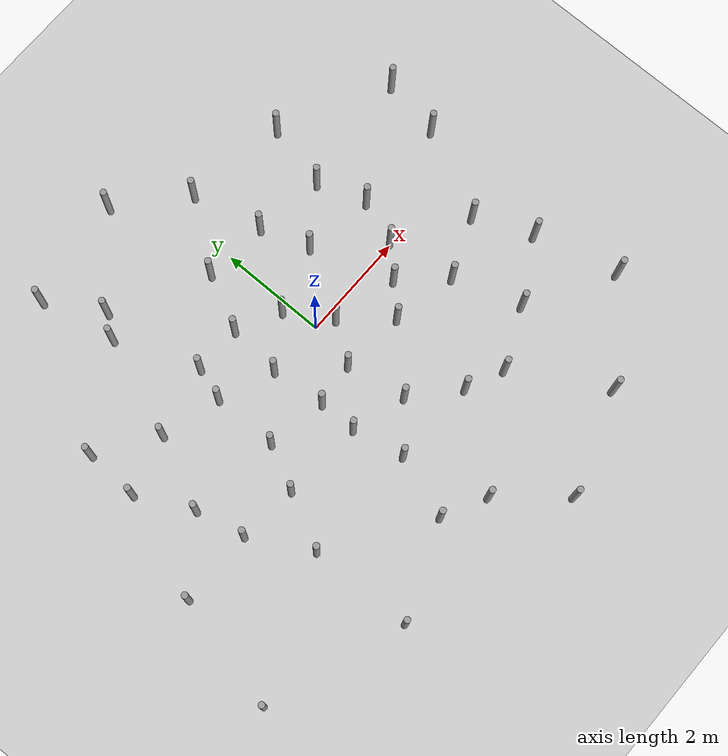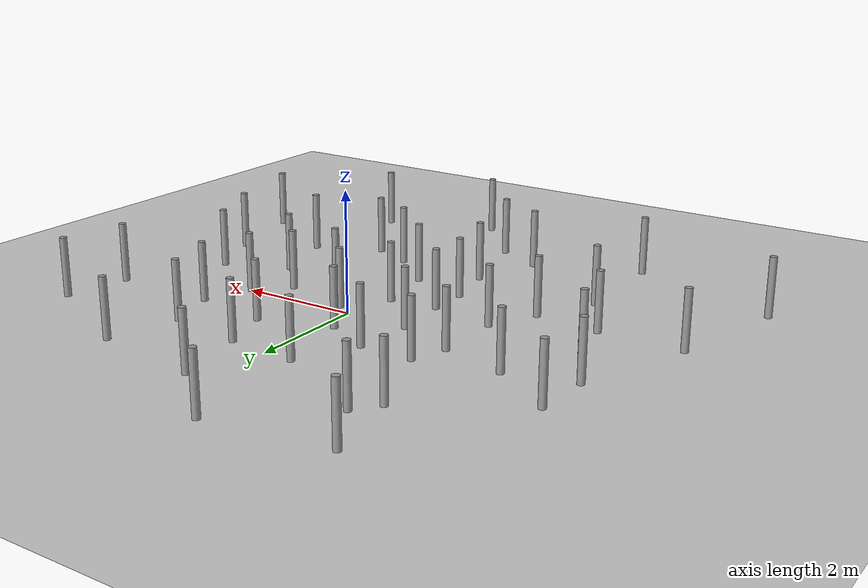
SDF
<sdf version="1.7">
 <world name="default">
  <plugin name="gazebo_ros_state" filename="libgazebo_ros_state.so">
   <ros>
    <namespace>/gazebo</namespace>
    <argument>model_states:=model_states_demo</argument>
    <argument>link_states:=link_states_demo</argument>
   </ros>
   <update_rate>1.0</update_rate>
  </plugin>
  <light name="sun" type="directional">
   <pose>0 0 10 0 -0 0</pose>
   <diffuse>0.8 0.8 0.8 1</diffuse>
   <specular>0.2 0.2 0.2 1</specular>
   <attenuation>
    <range>1000</range>
    <constant>0.9</constant>
    <linear>0.01</linear>
    <quadratic>0.001</quadratic>
   </attenuation>
   <direction>-0.5 0.1 -0.9</direction>
   <spot><inner_angle>0</inner_angle><outer_angle>0</outer_angle><falloff>0</falloff></spot>
  </light>
  <model name="ground_plane">
   <static>1</static>
   <link name="link">
    <collision name="collision">
     <geometry><plane><normal>0 0 1</normal><size>100 100</size></plane></geometry>
     <surface><friction><ode><mu>100</mu><mu2>50</mu2></ode></friction></surface>
    </collision>
    <visual name="visual">
     <cast_shadows>0</cast_shadows>
     <geometry><plane><normal>0 0 1</normal><size>100 100</size></plane></geometry>
     <material>
      <script><uri>file://media/materials/scripts/gazebo.material</uri><name>Gazebo/Grey</name></script>
     </material>
    </visual>
   </link>
  </model>
  <gravity>0 0 -9.8</gravity>
  <magnetic_field>6e-06 2.3e-05 -4.2e-05</magnetic_field>
  <atmosphere type="adiabatic"/>
  <physics type="ode">
   <max_step_size>0.001</max_step_size>
   <real_time_factor>1</real_time_factor>
   <real_time_update_rate>1000</real_time_update_rate>
  </physics>
  <scene><ambient>0.4 0.4 0.4 1</ambient><background>0.7 0.7 0.7 1</background><shadows>1</shadows></scene>
  <spherical_coordinates>
   <surface_model>EARTH_WGS84</surface_model>
   <latitude_deg>0</latitude_deg>
   <longitude_deg>0</longitude_deg>
   <elevation>0</elevation>
   <heading_deg>0</heading_deg>
  </spherical_coordinates>
  <model name="unit_cylinder_0_clone">
   <pose>1.00005 -0.999915 0.499991 0 -0 0.000354</pose>
   <link name="link">
    <inertial>
     <mass>1</mass>
     <inertia><ixx>0.145833</ixx><ixy>0</ixy><ixz>0</ixz><iyy>0.145833</iyy><iyz>0</iyz><izz>0.125</izz></inertia>
    </inertial>
    <collision name="collision">
     <geometry><cylinder><radius>0.06</radius><length>1</length></cylinder></geometry>
    </collision>
    <visual name="visual">
     <geometry><cylinder><radius>0.06</radius><length>1</length></cylinder></geometry>
     <material>
      <script><name>Gazebo/Grey</name><uri>file://media/materials/scripts/gazebo.material</uri></script>
     </material>
    </visual>
   </link>
  </model>
  <model name="unit_cylinder_0_clone_0">
   <pose>-0.999954 1.0001 0.499993 -1e-06 -0 0.000914</pose>
   <link name="link">
    <inertial>
     <mass>1</mass>
     <inertia><ixx>0.145833</ixx><ixy>0</ixy><ixz>0</ixz><iyy>0.145833</iyy><iyz>0</iyz><izz>0.125</izz></inertia>
    </inertial>
    <collision name="collision">
     <geometry><cylinder><radius>0.06</radius><length>1</length></cylinder></geometry>
    </collision>
    <visual name="visual">
     <geometry><cylinder><radius>0.06</radius><length>1</length></cylinder></geometry>
     <material>
      <script><name>Gazebo/Grey</name><uri>file://media/materials/scripts/gazebo.material</uri></script>
     </material>
    </visual>
   </link>
  </model>
  <model name="unit_cylinder_0_clone_1">
   <pose>-0.999956 -0.999947 0.499995 0 0 -0.004718</pose>
   <link name="link">
    <inertial>
     <mass>1</mass>
     <inertia><ixx>0.145833</ixx><ixy>0</ixy><ixz>0</ixz><iyy>0.145833</iyy><iyz>0</iyz><izz>0.125</izz></inertia>
    </inertial>
    <collision name="collision">
     <geometry><cylinder><radius>0.06</radius><length>1</length></cylinder></geometry>
    </collision>
    <visual name="visual">
     <geometry><cylinder><radius>0.06</radius><length>1</length></cylinder></geometry>
     <material>
      <script><name>Gazebo/Grey</name><uri>file://media/materials/scripts/gazebo.material</uri></script>
     </material>
    </visual>
   </link>
  </model>
  <model name="unit_cylinder_0_clone_2">
   <pose>2.00005 7.4e-05 0.499995 0 0 -0.000848</pose>
   <link name="link">
    <inertial>
     <mass>1</mass>
     <inertia><ixx>0.145833</ixx><ixy>0</ixy><ixz>0</ixz><iyy>0.145833</iyy><iyz>0</iyz><izz>0.125</izz></inertia>
    </inertial>
    <collision name="collision">
     <geometry><cylinder><radius>0.06</radius><length>1</length></cylinder></geometry>
    </collision>
    <visual name="visual">
     <geometry><cylinder><radius>0.06</radius><length>1</length></cylinder></geometry>
     <material>
      <script><name>Gazebo/Grey</name><uri>file://media/materials/scripts/gazebo.material</uri></script>
     </material>
    </visual>
   </link>
  </model>
  <model name="unit_cylinder_0_clone_3">
   <pose>4.8e-05 -1.99992 0.5 -1e-06 -0 0.00075</pose>
   <link name="link">
    <inertial>
     <mass>1</mass>
     <inertia><ixx>0.145833</ixx><ixy>0</ixy><ixz>0</ixz><iyy>0.145833</iyy><iyz>0</iyz><izz>0.125</izz></inertia>
    </inertial>
    <collision name="collision">
     <geometry><cylinder><radius>0.06</radius><length>1</length></cylinder></geometry>
    </collision>
    <visual name="visual">
     <geometry><cylinder><radius>0.06</radius><length>1</length></cylinder></geometry>
     <material>
      <script><name>Gazebo/Grey</name><uri>file://media/materials/scripts/gazebo.material</uri></script>
     </material>
    </visual>
   </link>
  </model>
  <model name="unit_cylinder_0_clone_4">
   <pose>1.50005 -2.99992 0.499993 0 -0 0.000815</pose>
   <link name="link">
    <inertial>
     <mass>1</mass>
     <inertia><ixx>0.145833</ixx><ixy>0</ixy><ixz>0</ixz><iyy>0.145833</iyy><iyz>0</iyz><izz>0.125</izz></inertia>
    </inertial>
    <collision name="collision">
     <geometry><cylinder><radius>0.06</radius><length>1</length></cylinder></geometry>
    </collision>
    <visual name="visual">
     <geometry><cylinder><radius>0.06</radius><length>1</length></cylinder></geometry>
     <material>
      <script><name>Gazebo/Grey</name><uri>file://media/materials/scripts/gazebo.material</uri></script>
     </material>
    </visual>
   </link>
  </model>
  <model name="unit_cylinder_0_clone_5">
   <pose>-0.499962 2.00007 0.499998 0 -0 0.000425</pose>
   <link name="link">
    <inertial>
     <mass>1</mass>
     <inertia><ixx>0.145833</ixx><ixy>0</ixy><ixz>0</ixz><iyy>0.145833</iyy><iyz>0</iyz><izz>0.125</izz></inertia>
    </inertial>
    <collision name="collision">
     <geometry><cylinder><radius>0.06</radius><length>1</length></cylinder></geometry>
    </collision>
    <visual name="visual">
     <geometry><cylinder><radius>0.06</radius><length>1</length></cylinder></geometry>
     <material>
      <script><name>Gazebo/Grey</name><uri>file://media/materials/scripts/gazebo.material</uri></script>
     </material>
    </visual>
   </link>
  </model>
  <model name="unit_cylinder_0_clone_6">
   <pose>-0.999961 -1.69993 0.5 -1e-06 -0 0.00038</pose>
   <link name="link">
    <inertial>
     <mass>1</mass>
     <inertia><ixx>0.145833</ixx><ixy>0</ixy><ixz>0</ixz><iyy>0.145833</iyy><iyz>0</iyz><izz>0.125</izz></inertia>
    </inertial>
    <collision name="collision">
     <geometry><cylinder><radius>0.06</radius><length>1</length></cylinder></geometry>
    </collision>
    <visual name="visual">
     <geometry><cylinder><radius>0.06</radius><length>1</length></cylinder></geometry>
     <material>
      <script><name>Gazebo/Grey</name><uri>file://media/materials/scripts/gazebo.material</uri></script>
     </material>
    </visual>
   </link>
  </model>
  <model name="unit_cylinder_0_clone_7">
   <pose>2.30004 0.800067 0.499992 0 -0 0.000136</pose>
   <link name="link">
    <inertial>
     <mass>1</mass>
     <inertia><ixx>0.145833</ixx><ixy>0</ixy><ixz>0</ixz><iyy>0.145833</iyy><iyz>0</iyz><izz>0.125</izz></inertia>
    </inertial>
    <collision name="collision">
     <geometry><cylinder><radius>0.06</radius><length>1</length></cylinder></geometry>
    </collision>
    <visual name="visual">
     <geometry><cylinder><radius>0.06</radius><length>1</length></cylinder></geometry>
     <material>
      <script><name>Gazebo/Grey</name><uri>file://media/materials/scripts/gazebo.material</uri></script>
     </material>
    </visual>
   </link>
  </model>
  <model name="unit_cylinder_0_clone_8">
   <pose>-1.09996 7e-05 0.499992 0 -0 0.000449</pose>
   <link name="link">
    <inertial>
     <mass>1</mass>
     <inertia><ixx>0.145833</ixx><ixy>0</ixy><ixz>0</ixz><iyy>0.145833</iyy><iyz>0</iyz><izz>0.125</izz></inertia>
    </inertial>
    <collision name="collision">
     <geometry><cylinder><radius>0.06</radius><length>1</length></cylinder></geometry>
    </collision>
    <visual name="visual">
     <geometry><cylinder><radius>0.06</radius><length>1</length></cylinder></geometry>
     <material>
      <script><name>Gazebo/Grey</name><uri>file://media/materials/scripts/gazebo.material</uri></script>
     </material>
    </visual>
   </link>
  </model>
  <model name="unit_cylinder_0_clone_9">
   <pose>3.30003 -0.799936 0.499998 0 -0 0.00047</pose>
   <link name="link">
    <inertial>
     <mass>1</mass>
     <inertia><ixx>0.145833</ixx><ixy>0</ixy><ixz>0</ixz><iyy>0.145833</iyy><iyz>0</iyz><izz>0.125</izz></inertia>
    </inertial>
    <collision name="collision">
     <geometry><cylinder><radius>0.06</radius><length>1</length></cylinder></geometry>
    </collision>
    <visual name="visual">
     <geometry><cylinder><radius>0.06</radius><length>1</length></cylinder></geometry>
     <material>
      <script><name>Gazebo/Grey</name><uri>file://media/materials/scripts/gazebo.material</uri></script>
     </material>
    </visual>
   </link>
  </model>
  <model name="unit_cylinder_0_clone_10">
   <pose>-1.89996 1.00004 0.499995 0 0 -0.004086</pose>
   <link name="link">
    <inertial>
     <mass>1</mass>
     <inertia><ixx>0.145833</ixx><ixy>0</ixy><ixz>0</ixz><iyy>0.145833</iyy><iyz>0</iyz><izz>0.125</izz></inertia>
    </inertial>
    <collision name="collision">
     <geometry><cylinder><radius>0.06</radius><length>1</length></cylinder></geometry>
    </collision>
    <visual name="visual">
     <geometry><cylinder><radius>0.06</radius><length>1</length></cylinder></geometry>
     <material>
      <script><name>Gazebo/Grey</name><uri>file://media/materials/scripts/gazebo.material</uri></script>
     </material>
    </visual>
   </link>
  </model>
  <model name="unit_cylinder_0_clone_11">
   <pose>0.800037 -2.69994 0.499999 0 1e-06 0.000486</pose>
   <link name="link">
    <inertial>
     <mass>1</mass>
     <inertia><ixx>0.145833</ixx><ixy>0</ixy><ixz>0</ixz><iyy>0.145833</iyy><iyz>0</iyz><izz>0.125</izz></inertia>
    </inertial>
    <collision name="collision">
     <geometry><cylinder><radius>0.06</radius><length>1</length></cylinder></geometry>
    </collision>
    <visual name="visual">
     <geometry><cylinder><radius>0.06</radius><length>1</length></cylinder></geometry>
     <material>
      <script><name>Gazebo/Grey</name><uri>file://media/materials/scripts/gazebo.material</uri></script>
     </material>
    </visual>
   </link>
  </model>
  <model name="unit_cylinder_0_clone_12">
   <pose>0.300029 -0.199947 0.499991 0 -0 0.000235</pose>
   <link name="link">
    <inertial>
     <mass>1</mass>
     <inertia><ixx>0.145833</ixx><ixy>0</ixy><ixz>0</ixz><iyy>0.145833</iyy><iyz>0</iyz><izz>0.125</izz></inertia>
    </inertial>
    <collision name="collision">
     <geometry><cylinder><radius>0.06</radius><length>1</length></cylinder></geometry>
    </collision>
    <visual name="visual">
     <geometry><cylinder><radius>0.06</radius><length>1</length></cylinder></geometry>
     <material>
      <script><name>Gazebo/Grey</name><uri>file://media/materials/scripts/gazebo.material</uri></script>
     </material>
    </visual>
   </link>
  </model>
  <model name="unit_cylinder_0_clone_13">
   <pose>-0.199966 0.600065 0.499992 0 -0 0.000826</pose>
   <link name="link">
    <inertial>
     <mass>1</mass>
     <inertia><ixx>0.145833</ixx><ixy>0</ixy><ixz>0</ixz><iyy>0.145833</iyy><iyz>0</iyz><izz>0.125</izz></inertia>
    </inertial>
    <collision name="collision">
     <geometry><cylinder><radius>0.06</radius><length>1</length></cylinder></geometry>
    </collision>
    <visual name="visual">
     <geometry><cylinder><radius>0.06</radius><length>1</length></cylinder></geometry>
     <material>
      <script><name>Gazebo/Grey</name><uri>file://media/materials/scripts/gazebo.material</uri></script>
     </material>
    </visual>
   </link>
  </model>
  <model name="unit_cylinder_0_clone_14">
   <pose>-2.09998 -0.799948 0.499991 2e-06 -1e-06 0.000364</pose>
   <link name="link">
    <inertial>
     <mass>1</mass>
     <inertia><ixx>0.145833</ixx><ixy>0</ixy><ixz>0</ixz><iyy>0.145833</iyy><iyz>0</iyz><izz>0.125</izz></inertia>
    </inertial>
    <collision name="collision">
     <geometry><cylinder><radius>0.06</radius><length>1</length></cylinder></geometry>
    </collision>
    <visual name="visual">
     <geometry><cylinder><radius>0.06</radius><length>1</length></cylinder></geometry>
     <material>
      <script><name>Gazebo/Grey</name><uri>file://media/materials/scripts/gazebo.material</uri></script>
     </material>
    </visual>
   </link>
  </model>
  <model name="unit_cylinder_0_clone_15">
   <pose>-0.199972 -0.899947 0.499998 0 -0 0.000475</pose>
   <link name="link">
    <inertial>
     <mass>1</mass>
     <inertia><ixx>0.145833</ixx><ixy>0</ixy><ixz>0</ixz><iyy>0.145833</iyy><iyz>0</iyz><izz>0.125</izz></inertia>
    </inertial>
    <collision name="collision">
     <geometry><cylinder><radius>0.06</radius><length>1</length></cylinder></geometry>
    </collision>
    <visual name="visual">
     <geometry><cylinder><radius>0.06</radius><length>1</length></cylinder></geometry>
     <material>
      <script><name>Gazebo/Grey</name><uri>file://media/materials/scripts/gazebo.material</uri></script>
     </material>
    </visual>
   </link>
  </model>
  <model name="unit_cylinder_0_clone_16">
   <pose>0.700031 1.90006 0.5 0 1e-06 0.000513</pose>
   <link name="link">
    <inertial>
     <mass>1</mass>
     <inertia><ixx>0.145833</ixx><ixy>0</ixy><ixz>0</ixz><iyy>0.145833</iyy><iyz>0</iyz><izz>0.125</izz></inertia>
    </inertial>
    <collision name="collision">
     <geometry><cylinder><radius>0.06</radius><length>1</length></cylinder></geometry>
    </collision>
    <visual name="visual">
     <geometry><cylinder><radius>0.06</radius><length>1</length></cylinder></geometry>
     <material>
      <script><name>Gazebo/Grey</name><uri>file://media/materials/scripts/gazebo.material</uri></script>
     </material>
    </visual>
   </link>
  </model>
  <model name="unit_cylinder_0_clone_17">
   <pose>1.50003 -0.499935 0.5 0 -0 0.00095</pose>
   <link name="link">
    <inertial>
     <mass>1</mass>
     <inertia><ixx>0.145833</ixx><ixy>0</ixy><ixz>0</ixz><iyy>0.145833</iyy><iyz>0</iyz><izz>0.125</izz></inertia>
    </inertial>
    <collision name="collision">
     <geometry><cylinder><radius>0.06</radius><length>1</length></cylinder></geometry>
    </collision>
    <visual name="visual">
     <geometry><cylinder><radius>0.06</radius><length>1</length></cylinder></geometry>
     <material>
      <script><name>Gazebo/Grey</name><uri>file://media/materials/scripts/gazebo.material</uri></script>
     </material>
    </visual>
   </link>
  </model>
  <model name="unit_cylinder_0_clone_13_clone">
   <pose>1.00003 1.00004 0.499995 0 0 -0.00158</pose>
   <link name="link">
    <inertial>
     <mass>1</mass>
     <inertia><ixx>0.145833</ixx><ixy>0</ixy><ixz>0</ixz><iyy>0.145833</iyy><iyz>0</iyz><izz>0.125</izz></inertia>
    </inertial>
    <collision name="collision">
     <geometry><cylinder><radius>0.06</radius><length>1</length></cylinder></geometry>
    </collision>
    <visual name="visual">
     <geometry><cylinder><radius>0.06</radius><length>1</length></cylinder></geometry>
     <material>
      <script><name>Gazebo/Grey</name><uri>file://media/materials/scripts/gazebo.material</uri></script>
     </material>
    </visual>
   </link>
  </model>
  <model name="unit_cylinder_0_clone_clone">
   <pose>-2.09998 0.40003 0.499995 0 0 -0.002447</pose>
   <link name="link">
    <inertial>
     <mass>1</mass>
     <inertia><ixx>0.145833</ixx><ixy>0</ixy><ixz>0</ixz><iyy>0.145833</iyy><iyz>0</iyz><izz>0.125</izz></inertia>
    </inertial>
    <collision name="collision">
     <geometry><cylinder><radius>0.06</radius><length>1</length></cylinder></geometry>
    </collision>
    <visual name="visual">
     <geometry><cylinder><radius>0.06</radius><length>1</length></cylinder></geometry>
     <material>
      <script><name>Gazebo/Grey</name><uri>file://media/materials/scripts/gazebo.material</uri></script>
     </material>
    </visual>
   </link>
  </model>
  <model name="unit_cylinder_0_clone_clone_0">
   <pose>0.400027 3.20005 0.499998 0 -0 0.000792</pose>
   <link name="link">
    <inertial>
     <mass>1</mass>
     <inertia><ixx>0.145833</ixx><ixy>0</ixy><ixz>0</ixz><iyy>0.145833</iyy><iyz>0</iyz><izz>0.125</izz></inertia>
    </inertial>
    <collision name="collision">
     <geometry><cylinder><radius>0.06</radius><length>1</length></cylinder></geometry>
    </collision>
    <visual name="visual">
     <geometry><cylinder><radius>0.06</radius><length>1</length></cylinder></geometry>
     <material>
      <script><name>Gazebo/Grey</name><uri>file://media/materials/scripts/gazebo.material</uri></script>
     </material>
    </visual>
   </link>
  </model>
  <model name="unit_cylinder_0_clone_clone_1">
   <pose>4.30002 1.90004 0.499995 0 -0 7.8e-05</pose>
   <link name="link">
    <inertial>
     <mass>1</mass>
     <inertia><ixx>0.145833</ixx><ixy>0</ixy><ixz>0</ixz><iyy>0.145833</iyy><iyz>0</iyz><izz>0.125</izz></inertia>
    </inertial>
    <collision name="collision">
     <geometry><cylinder><radius>0.06</radius><length>1</length></cylinder></geometry>
    </collision>
    <visual name="visual">
     <geometry><cylinder><radius>0.06</radius><length>1</length></cylinder></geometry>
     <material>
      <script><name>Gazebo/Grey</name><uri>file://media/materials/scripts/gazebo.material</uri></script>
     </material>
    </visual>
   </link>
  </model>
  <model name="unit_cylinder_0_clone_clone_2">
   <pose>2.30002 2.90004 0.499993 -1e-06 -0 0.000287</pose>
   <link name="link">
    <inertial>
     <mass>1</mass>
     <inertia><ixx>0.145833</ixx><ixy>0</ixy><ixz>0</ixz><iyy>0.145833</iyy><iyz>0</iyz><izz>0.125</izz></inertia>
    </inertial>
    <collision name="collision">
     <geometry><cylinder><radius>0.06</radius><length>1</length></cylinder></geometry>
    </collision>
    <visual name="visual">
     <geometry><cylinder><radius>0.06</radius><length>1</length></cylinder></geometry>
     <material>
      <script><name>Gazebo/Grey</name><uri>file://media/materials/scripts/gazebo.material</uri></script>
     </material>
    </visual>
   </link>
  </model>
  <model name="unit_cylinder_0_clone_clone_3">
   <pose>-2.19998 2.90004 0.499991 0 -0 0.000413</pose>
   <link name="link">
    <inertial>
     <mass>1</mass>
     <inertia><ixx>0.145833</ixx><ixy>0</ixy><ixz>0</ixz><iyy>0.145833</iyy><iyz>0</iyz><izz>0.125</izz></inertia>
    </inertial>
    <collision name="collision">
     <geometry><cylinder><radius>0.06</radius><length>1</length></cylinder></geometry>
    </collision>
    <visual name="visual">
     <geometry><cylinder><radius>0.06</radius><length>1</length></cylinder></geometry>
     <material>
      <script><name>Gazebo/Grey</name><uri>file://media/materials/scripts/gazebo.material</uri></script>
     </material>
    </visual>
   </link>
  </model>
  <model name="unit_cylinder_0_clone_clone_4">
   <pose>-3.19998 0.700022 0.499995 0 0 -0.001803</pose>
   <link name="link">
    <inertial>
     <mass>1</mass>
     <inertia><ixx>0.145833</ixx><ixy>0</ixy><ixz>0</ixz><iyy>0.145833</iyy><iyz>0</iyz><izz>0.125</izz></inertia>
    </inertial>
    <collision name="collision">
     <geometry><cylinder><radius>0.06</radius><length>1</length></cylinder></geometry>
    </collision>
    <visual name="visual">
     <geometry><cylinder><radius>0.06</radius><length>1</length></cylinder></geometry>
     <material>
      <script><name>Gazebo/Grey</name><uri>file://media/materials/scripts/gazebo.material</uri></script>
     </material>
    </visual>
   </link>
  </model>
  <model name="unit_cylinder_0_clone_clone_5">
   <pose>-4.24998 1.40003 0.499998 0 1e-06 0.000199</pose>
   <link name="link">
    <inertial>
     <mass>1</mass>
     <inertia><ixx>0.145833</ixx><ixy>0</ixy><ixz>0</ixz><iyy>0.145833</iyy><iyz>0</iyz><izz>0.125</izz></inertia>
    </inertial>
    <collision name="collision">
     <geometry><cylinder><radius>0.06</radius><length>1</length></cylinder></geometry>
    </collision>
    <visual name="visual">
     <geometry><cylinder><radius>0.06</radius><length>1</length></cylinder></geometry>
     <material>
      <script><name>Gazebo/Grey</name><uri>file://media/materials/scripts/gazebo.material</uri></script>
     </material>
    </visual>
   </link>
  </model>
  <model name="unit_cylinder_0_clone_clone_6">
   <pose>-3.79998 -0.599965 0.49999 0 -0 0.000613</pose>
   <link name="link">
    <inertial>
     <mass>1</mass>
     <inertia><ixx>0.145833</ixx><ixy>0</ixy><ixz>0</ixz><iyy>0.145833</iyy><iyz>0</iyz><izz>0.125</izz></inertia>
    </inertial>
    <collision name="collision">
     <geometry><cylinder><radius>0.06</radius><length>1</length></cylinder></geometry>
    </collision>
    <visual name="visual">
     <geometry><cylinder><radius>0.06</radius><length>1</length></cylinder></geometry>
     <material>
      <script><name>Gazebo/Grey</name><uri>file://media/materials/scripts/gazebo.material</uri></script>
     </material>
    </visual>
   </link>
  </model>
  <model name="unit_cylinder_0_clone_clone_7">
   <pose>-2.49999 -1.59997 0.499998 0 -0 0.000219</pose>
   <link name="link">
    <inertial>
     <mass>1</mass>
     <inertia><ixx>0.145833</ixx><ixy>0</ixy><ixz>0</ixz><iyy>0.145833</iyy><iyz>0</iyz><izz>0.125</izz></inertia>
    </inertial>
    <collision name="collision">
     <geometry><cylinder><radius>0.06</radius><length>1</length></cylinder></geometry>
    </collision>
    <visual name="visual">
     <geometry><cylinder><radius>0.06</radius><length>1</length></cylinder></geometry>
     <material>
      <script><name>Gazebo/Grey</name><uri>file://media/materials/scripts/gazebo.material</uri></script>
     </material>
    </visual>
   </link>
  </model>
  <model name="unit_cylinder_0_clone_clone_8">
   <pose>-0.399987 -4.19998 0.499993 0 -0 0.000264</pose>
   <link name="link">
    <inertial>
     <mass>1</mass>
     <inertia><ixx>0.145833</ixx><ixy>0</ixy><ixz>0</ixz><iyy>0.145833</iyy><iyz>0</iyz><izz>0.125</izz></inertia>
    </inertial>
    <collision name="collision">
     <geometry><cylinder><radius>0.06</radius><length>1</length></cylinder></geometry>
    </collision>
    <visual name="visual">
     <geometry><cylinder><radius>0.06</radius><length>1</length></cylinder></geometry>
     <material>
      <script><name>Gazebo/Grey</name><uri>file://media/materials/scripts/gazebo.material</uri></script>
     </material>
    </visual>
   </link>
  </model>
  <model name="unit_cylinder_0_clone_clone_9">
   <pose>-2.99998 -2.59997 0.499998 1e-06 -0 0.00057</pose>
   <link name="link">
    <inertial>
     <mass>1</mass>
     <inertia><ixx>0.145833</ixx><ixy>0</ixy><ixz>0</ixz><iyy>0.145833</iyy><iyz>0</iyz><izz>0.125</izz></inertia>
    </inertial>
    <collision name="collision">
     <geometry><cylinder><radius>0.06</radius><length>1</length></cylinder></geometry>
    </collision>
    <visual name="visual">
     <geometry><cylinder><radius>0.06</radius><length>1</length></cylinder></geometry>
     <material>
      <script><name>Gazebo/Grey</name><uri>file://media/materials/scripts/gazebo.material</uri></script>
     </material>
    </visual>
   </link>
  </model>
  <model name="unit_cylinder_0_clone_clone_10">
   <pose>-2.94999 -4.49997 0.499998 0 -0 0.000425</pose>
   <link name="link">
    <inertial>
     <mass>1</mass>
     <inertia><ixx>0.145833</ixx><ixy>0</ixy><ixz>0</ixz><iyy>0.145833</iyy><iyz>0</iyz><izz>0.125</izz></inertia>
    </inertial>
    <collision name="collision">
     <geometry><cylinder><radius>0.06</radius><length>1</length></cylinder></geometry>
    </collision>
    <visual name="visual">
     <geometry><cylinder><radius>0.06</radius><length>1</length></cylinder></geometry>
     <material>
      <script><name>Gazebo/Grey</name><uri>file://media/materials/scripts/gazebo.material</uri></script>
     </material>
    </visual>
   </link>
  </model>
  <model name="unit_cylinder_0_clone_clone_11">
   <pose>-4.99999 -1.49998 0.499998 1e-06 -0 0.000464</pose>
   <link name="link">
    <inertial>
     <mass>1</mass>
     <inertia><ixx>0.145833</ixx><ixy>0</ixy><ixz>0</ixz><iyy>0.145833</iyy><iyz>0</iyz><izz>0.125</izz></inertia>
    </inertial>
    <collision name="collision">
     <geometry><cylinder><radius>0.06</radius><length>1</length></cylinder></geometry>
    </collision>
    <visual name="visual">
     <geometry><cylinder><radius>0.06</radius><length>1</length></cylinder></geometry>
     <material>
      <script><name>Gazebo/Grey</name><uri>file://media/materials/scripts/gazebo.material</uri></script>
     </material>
    </visual>
   </link>
  </model>
  <model name="unit_cylinder_0_clone_clone_12">
   <pose>-2.49999 2.50002 0.499995 0 0 -0.000668</pose>
   <link name="link">
    <inertial>
     <mass>1</mass>
     <inertia><ixx>0.145833</ixx><ixy>0</ixy><ixz>0</ixz><iyy>0.145833</iyy><iyz>0</iyz><izz>0.125</izz></inertia>
    </inertial>
    <collision name="collision">
     <geometry><cylinder><radius>0.06</radius><length>1</length></cylinder></geometry>
    </collision>
    <visual name="visual">
     <geometry><cylinder><radius>0.06</radius><length>1</length></cylinder></geometry>
     <material>
      <script><name>Gazebo/Grey</name><uri>file://media/materials/scripts/gazebo.material</uri></script>
     </material>
    </visual>
   </link>
  </model>
  <model name="unit_cylinder_0_clone_clone_13">
   <pose>-0.799992 -2.64999 0.499998 0 -0 0.000266</pose>
   <link name="link">
    <inertial>
     <mass>1</mass>
     <inertia><ixx>0.145833</ixx><ixy>0</ixy><ixz>0</ixz><iyy>0.145833</iyy><iyz>0</iyz><izz>0.125</izz></inertia>
    </inertial>
    <collision name="collision">
     <geometry><cylinder><radius>0.06</radius><length>1</length></cylinder></geometry>
    </collision>
    <visual name="visual">
     <geometry><cylinder><radius>0.06</radius><length>1</length></cylinder></geometry>
     <material>
      <script><name>Gazebo/Grey</name><uri>file://media/materials/scripts/gazebo.material</uri></script>
     </material>
    </visual>
   </link>
  </model>
  <model name="unit_cylinder_0_clone_clone_14">
   <pose>2.45001 -4.64998 0.5 -1e-06 -1e-06 0.000451</pose>
   <link name="link">
    <inertial>
     <mass>1</mass>
     <inertia><ixx>0.145833</ixx><ixy>0</ixy><ixz>0</ixz><iyy>0.145833</iyy><iyz>0</iyz><izz>0.125</izz></inertia>
    </inertial>
    <collision name="collision">
     <geometry><cylinder><radius>0.06</radius><length>1</length></cylinder></geometry>
    </collision>
    <visual name="visual">
     <geometry><cylinder><radius>0.06</radius><length>1</length></cylinder></geometry>
     <material>
      <script><name>Gazebo/Grey</name><uri>file://media/materials/scripts/gazebo.material</uri></script>
     </material>
    </visual>
   </link>
  </model>
  <model name="unit_cylinder_0_clone_clone_15">
   <pose>-1.19999 -3.79999 0.499991 -1e-06 -0 0.000196</pose>
   <link name="link">
    <inertial>
     <mass>1</mass>
     <inertia><ixx>0.145833</ixx><ixy>0</ixy><ixz>0</ixz><iyy>0.145833</iyy><iyz>0</iyz><izz>0.125</izz></inertia>
    </inertial>
    <collision name="collision">
     <geometry><cylinder><radius>0.06</radius><length>1</length></cylinder></geometry>
    </collision>
    <visual name="visual">
     <geometry><cylinder><radius>0.06</radius><length>1</length></cylinder></geometry>
     <material>
      <script><name>Gazebo/Grey</name><uri>file://media/materials/scripts/gazebo.material</uri></script>
     </material>
    </visual>
   </link>
  </model>
  <model name="unit_cylinder_0_clone_clone_16">
   <pose>4.10001 0.800018 0.499998 1e-06 -0 0.000453</pose>
   <link name="link">
    <inertial>
     <mass>1</mass>
     <inertia><ixx>0.145833</ixx><ixy>0</ixy><ixz>0</ixz><iyy>0.145833</iyy><iyz>0</iyz><izz>0.125</izz></inertia>
    </inertial>
    <collision name="collision">
     <geometry><cylinder><radius>0.06</radius><length>1</length></cylinder></geometry>
    </collision>
    <visual name="visual">
     <geometry><cylinder><radius>0.06</radius><length>1</length></cylinder></geometry>
     <material>
      <script><name>Gazebo/Grey</name><uri>file://media/materials/scripts/gazebo.material</uri></script>
     </material>
    </visual>
   </link>
  </model>
  <model name="unit_cylinder_0_clone_clone_17">
   <pose>2.20001 -1.24998 0.5 -2e-06 0 0.000492</pose>
   <link name="link">
    <inertial>
     <mass>1</mass>
     <inertia><ixx>0.145833</ixx><ixy>0</ixy><ixz>0</ixz><iyy>0.145833</iyy><iyz>0</iyz><izz>0.125</izz></inertia>
    </inertial>
    <collision name="collision">
     <geometry><cylinder><radius>0.06</radius><length>1</length></cylinder></geometry>
    </collision>
    <visual name="visual">
     <geometry><cylinder><radius>0.06</radius><length>1</length></cylinder></geometry>
     <material>
      <script><name>Gazebo/Grey</name><uri>file://media/materials/scripts/gazebo.material</uri></script>
     </material>
    </visual>
   </link>
  </model>
  <model name="unit_cylinder_0_clone_clone_18">
   <pose>2.6 -2.49999 0.499998 0 -0 0.00025</pose>
   <link name="link">
    <inertial>
     <mass>1</mass>
     <inertia><ixx>0.145833</ixx><ixy>0</ixy><ixz>0</ixz><iyy>0.145833</iyy><iyz>0</iyz><izz>0.125</izz></inertia>
    </inertial>
    <collision name="collision">
     <geometry><cylinder><radius>0.06</radius><length>1</length></cylinder></geometry>
    </collision>
    <visual name="visual">
     <geometry><cylinder><radius>0.06</radius><length>1</length></cylinder></geometry>
     <material>
      <script><name>Gazebo/Grey</name><uri>file://media/materials/scripts/gazebo.material</uri></script>
     </material>
    </visual>
   </link>
  </model>
  <model name="unit_cylinder_0_clone_clone_19">
   <pose>4.15001 -3.39999 0.499998 0 -0 0.000425</pose>
   <link name="link">
    <inertial>
     <mass>1</mass>
     <inertia><ixx>0.145833</ixx><ixy>0</ixy><ixz>0</ixz><iyy>0.145833</iyy><iyz>0</iyz><izz>0.125</izz></inertia>
    </inertial>
    <collision name="collision">
     <geometry><cylinder><radius>0.06</radius><length>1</length></cylinder></geometry>
    </collision>
    <visual name="visual">
     <geometry><cylinder><radius>0.06</radius><length>1</length></cylinder></geometry>
     <material>
      <script><name>Gazebo/Grey</name><uri>file://media/materials/scripts/gazebo.material</uri></script>
     </material>
    </visual>
   </link>
  </model>
  <model name="unit_cylinder_0_clone_clone_20">
   <pose>-5.5 -3.59999 0.499993 0 -0 0.000323</pose>
   <link name="link">
    <inertial>
     <mass>1</mass>
     <inertia><ixx>0.145833</ixx><ixy>0</ixy><ixz>0</ixz><iyy>0.145833</iyy><iyz>0</iyz><izz>0.125</izz></inertia>
    </inertial>
    <collision name="collision">
     <geometry><cylinder><radius>0.06</radius><length>1</length></cylinder></geometry>
    </collision>
    <visual name="visual">
     <geometry><cylinder><radius>0.06</radius><length>1</length></cylinder></geometry>
     <material>
      <script><name>Gazebo/Grey</name><uri>file://media/materials/scripts/gazebo.material</uri></script>
     </material>
    </visual>
   </link>
  </model>
  <model name="unit_cylinder_0_clone_clone_21">
   <pose>3.75 -1.84999 0.5 0 -0 0.000409</pose>
   <link name="link">
    <inertial>
     <mass>1</mass>
     <inertia><ixx>0.145833</ixx><ixy>0</ixy><ixz>0</ixz><iyy>0.145833</iyy><iyz>0</iyz><izz>0.125</izz></inertia>
    </inertial>
    <collision name="collision">
     <geometry><cylinder><radius>0.06</radius><length>1</length></cylinder></geometry>
    </collision>
    <visual name="visual">
     <geometry><cylinder><radius>0.06</radius><length>1</length></cylinder></geometry>
     <material>
      <script><name>Gazebo/Grey</name><uri>file://media/materials/scripts/gazebo.material</uri></script>
     </material>
    </visual>
   </link>
  </model>
  <model name="unit_cylinder_0_clone_clone_22">
   <pose>-0.749995 4.20001 0.499998 0 -0 0.000452</pose>
   <link name="link">
    <inertial>
     <mass>1</mass>
     <inertia><ixx>0.145833</ixx><ixy>0</ixy><ixz>0</ixz><iyy>0.145833</iyy><iyz>0</iyz><izz>0.125</izz></inertia>
    </inertial>
    <collision name="collision">
     <geometry><cylinder><radius>0.06</radius><length>1</length></cylinder></geometry>
    </collision>
    <visual name="visual">
     <geometry><cylinder><radius>0.06</radius><length>1</length></cylinder></geometry>
     <material>
      <script><name>Gazebo/Grey</name><uri>file://media/materials/scripts/gazebo.material</uri></script>
     </material>
    </visual>
   </link>
  </model>
  <model name="unit_cylinder_0_clone_clone_23">
   <pose>-2.8 3.90001 0.499998 -1e-06 -0 0.000293</pose>
   <link name="link">
    <inertial>
     <mass>1</mass>
     <inertia><ixx>0.145833</ixx><ixy>0</ixy><ixz>0</ixz><iyy>0.145833</iyy><iyz>0</iyz><izz>0.125</izz></inertia>
    </inertial>
    <collision name="collision">
     <geometry><cylinder><radius>0.06</radius><length>1</length></cylinder></geometry>
    </collision>
    <visual name="visual">
     <geometry><cylinder><radius>0.06</radius><length>1</length></cylinder></geometry>
     <material>
      <script><name>Gazebo/Grey</name><uri>file://media/materials/scripts/gazebo.material</uri></script>
     </material>
    </visual>
   </link>
  </model>
  <model name="unit_cylinder_0_clone_clone_24">
   <pose>-3.6 -1.5 0.499993 -1e-06 0 0.00036</pose>
   <link name="link">
    <inertial>
     <mass>1</mass>
     <inertia><ixx>0.145833</ixx><ixy>0</ixy><ixz>0</ixz><iyy>0.145833</iyy><iyz>0</iyz><izz>0.125</izz></inertia>
    </inertial>
    <collision name="collision">
     <geometry><cylinder><radius>0.06</radius><length>1</length></cylinder></geometry>
    </collision>
    <visual name="visual">
     <geometry><cylinder><radius>0.06</radius><length>1</length></cylinder></geometry>
     <material>
      <script><name>Gazebo/Grey</name><uri>file://media/materials/scripts/gazebo.material</uri></script>
     </material>
    </visual>
   </link>
  </model>
  <model name="unit_cylinder_0_clone_clone_25">
   <pose>0.550001 -5.3 0.499998 0 -0 0.000379</pose>
   <link name="link">
    <inertial>
     <mass>1</mass>
     <inertia><ixx>0.145833</ixx><ixy>0</ixy><ixz>0</ixz><iyy>0.145833</iyy><iyz>0</iyz><izz>0.125</izz></inertia>
    </inertial>
    <collision name="collision">
     <geometry><cylinder><radius>0.06</radius><length>1</length></cylinder></geometry>
    </collision>
    <visual name="visual">
     <geometry><cylinder><radius>0.06</radius><length>1</length></cylinder></geometry>
     <material>
      <script><name>Gazebo/Grey</name><uri>file://media/materials/scripts/gazebo.material</uri></script>
     </material>
    </visual>
   </link>
  </model>
  <model name="unit_cylinder_0_clone_clone_26">
   <pose>2 1.7 0.499992 0 -0 0.000337</pose>
   <link name="link">
    <inertial>
     <mass>1</mass>
     <inertia><ixx>0.145833</ixx><ixy>0</ixy><ixz>0</ixz><iyy>0.145833</iyy><iyz>0</iyz><izz>0.125</izz></inertia>
    </inertial>
    <collision name="collision">
     <geometry><cylinder><radius>0.06</radius><length>1</length></cylinder></geometry>
    </collision>
    <visual name="visual">
     <geometry><cylinder><radius>0.06</radius><length>1</length></cylinder></geometry>
     <material>
      <script><name>Gazebo/Grey</name><uri>file://media/materials/scripts/gazebo.material</uri></script>
     </material>
    </visual>
   </link>
  </model>
  <model name="unit_cylinder_0_clone_clone_27">
   <pose>-4.3 0.400001 0.499991 0 -0 0.000336</pose>
   <link name="link">
    <inertial>
     <mass>1</mass>
     <inertia><ixx>0.145833</ixx><ixy>0</ixy><ixz>0</ixz><iyy>0.145833</iyy><iyz>0</iyz><izz>0.125</izz></inertia>
    </inertial>
    <collision name="collision">
     <geometry><cylinder><radius>0.06</radius><length>1</length></cylinder></geometry>
    </collision>
    <visual name="visual">
     <geometry><cylinder><radius>0.06</radius><length>1</length></cylinder></geometry>
     <material>
      <script><name>Gazebo/Grey</name><uri>file://media/materials/scripts/gazebo.material</uri></script>
     </material>
    </visual>
   </link>
  </model>
 </world>
</sdf>
